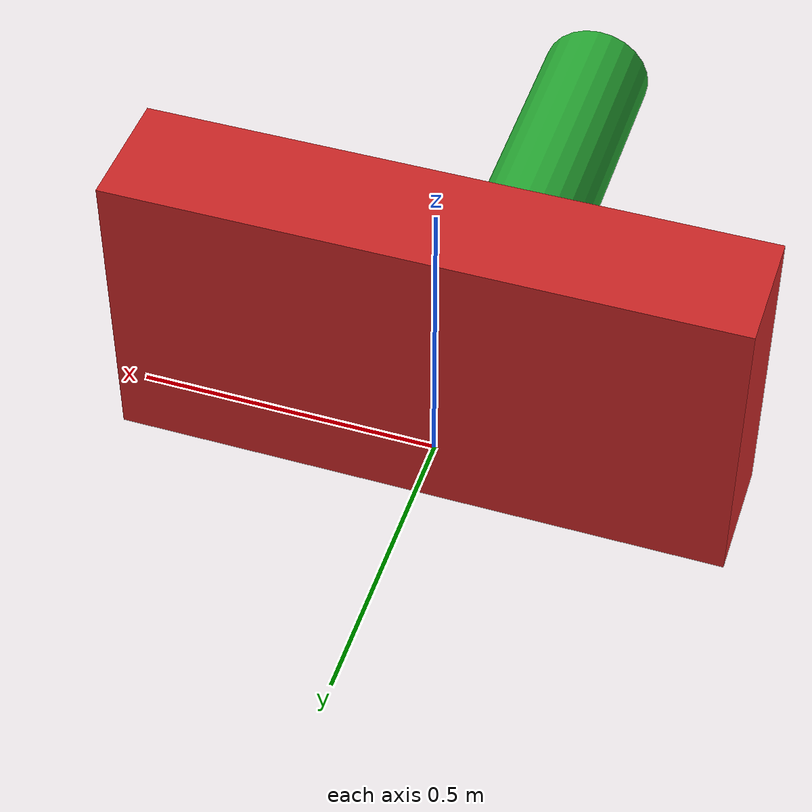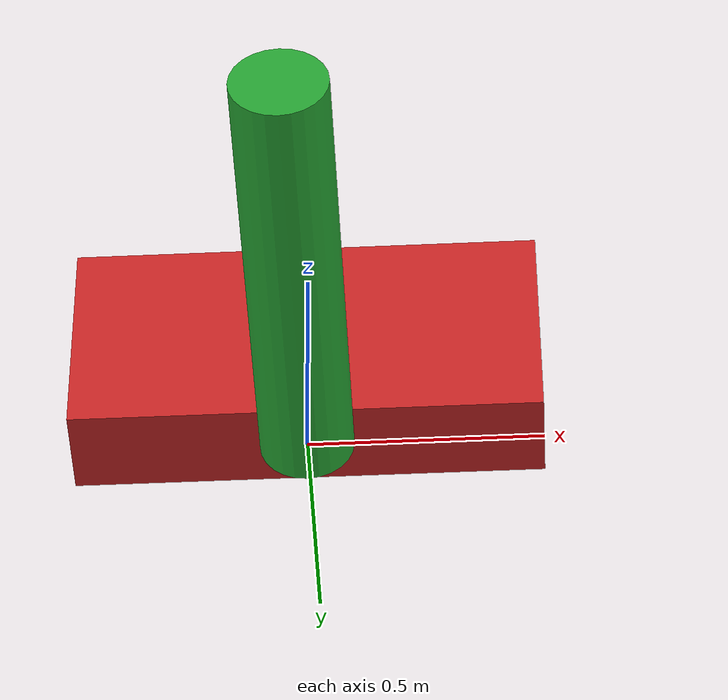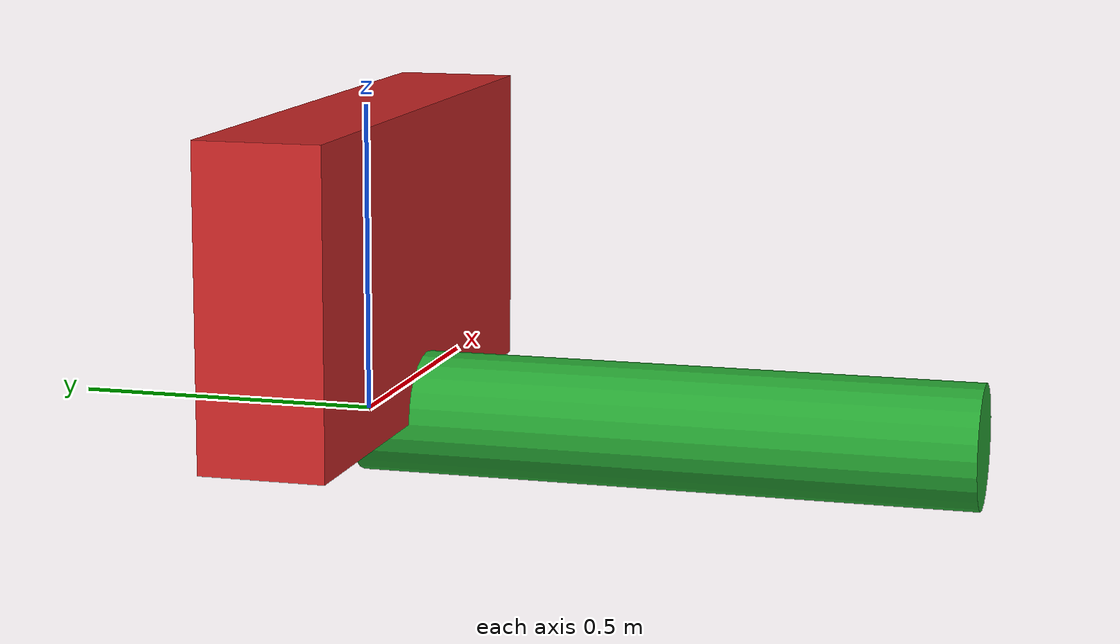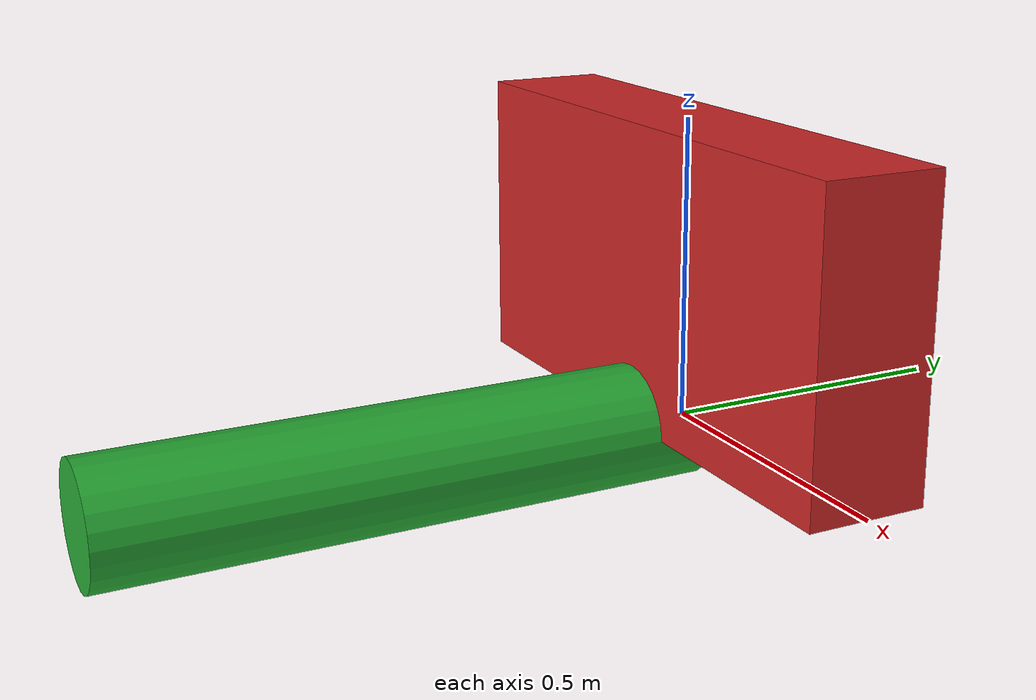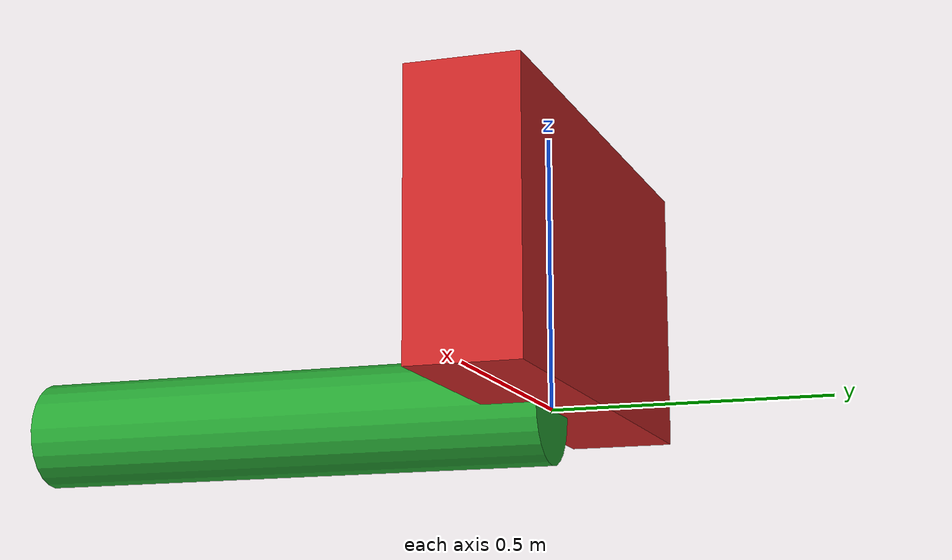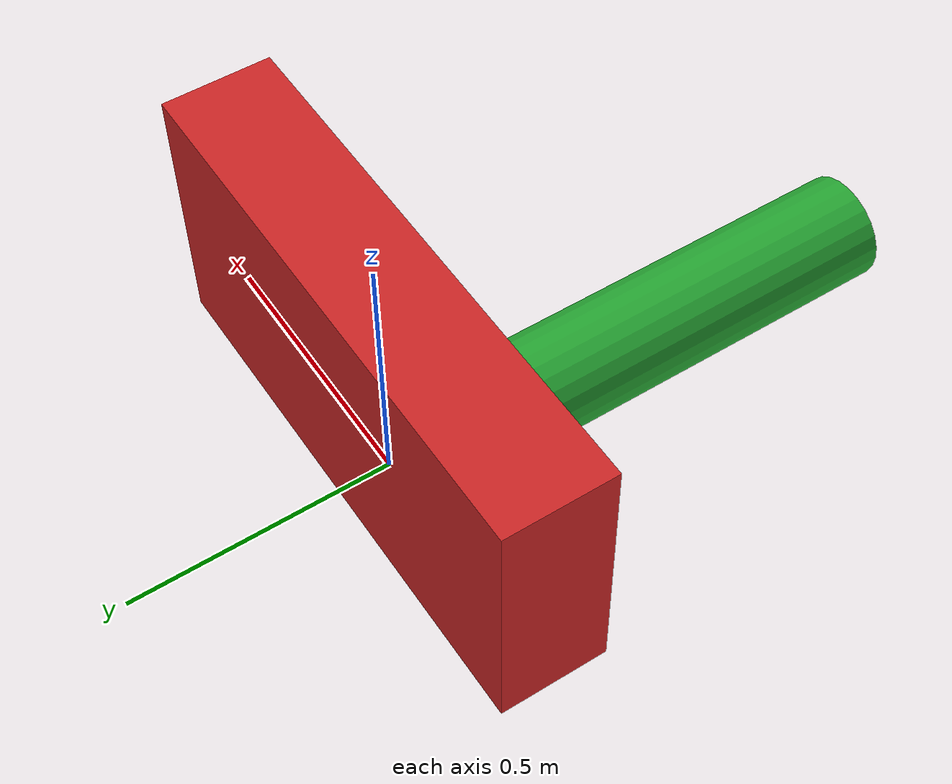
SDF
<sdf version="1.5">
  <model name="Sideways_Pendulum">
    <!-- Specifies X_WD, which is the model frame, D, expressed in the world
    frame, W. -->
    <pose frame="">0 0 0 0 0 0</pose>
    <link name="base">
      <!-- Specifies X_DL, which is the link frame, L, expressed in the model
      frame, D. -->
      <pose frame="">0 0 0 0 0 0</pose>
      <inertial>
        <!-- Specifies X_IL, the inertial frame, I, expressed in the link frame,
        L. -->
        <pose frame="">0 0 0 0 0 0</pose>
        <mass>1.0</mass>
        <inertia>
          <ixx>0</ixx>
          <ixy>0</ixy>
          <ixz>0</ixz>
          <iyy>0</iyy>
          <iyz>0</iyz>
          <izz>0</izz>
        </inertia>
      </inertial>
      <visual name="base_visual">
        <pose frame="">0 0 0.25 0 0 0</pose>
        <geometry>
          <box>
            <size>1 0.2 0.5</size>
          </box>
        </geometry>
        <material>
          <script>
            <uri>file://media/materials/scripts/gazebo.material</uri>
            <name>Gazebo/Red</name>
          </script>
        </material>
      </visual>
    </link>
    <link name="swing_arm">
      <!-- This specifies X_DL.
           Explicitly make it to be at Bo.-->
      <pose frame="">0 0 0 0 0 0</pose>
      <inertial>
        <!-- This specifies X_LI. -->
        <pose frame="">0 -0.5 0 0 0 0</pose>
        <mass>1</mass>
        <inertia>
          <ixx>0.08583333333</ixx>
          <ixy>0</ixy>
          <ixz>0</ixz>
          <iyy>0.08583333333</iyy>
          <iyz>0</iyz>
          <izz>0.005</izz>
        </inertia>
      </inertial>
      <visual name="swing_arm_visual">
        <pose frame="">0 -0.5 0 1.57079632679 0 0</pose>
        <geometry>
          <cylinder>
            <length>1</length>
            <radius>0.1</radius>
          </cylinder>
        </geometry>
        <material>
          <script>
            <uri>file://media/materials/scripts/gazebo.material</uri>
            <name>Gazebo/Green</name>
          </script>
        </material>
      </visual>
    </link>
    <joint name="joint1" type="revolute">
      <parent>base</parent>
      <child>swing_arm</child>
      <axis>
        <xyz>1 0 0</xyz>
        <!-- The default is the axis expressed in the inboard frame F. -->
        <use_parent_model_frame>1</use_parent_model_frame>
      </axis>
    </joint>
  </model>
</sdf>
